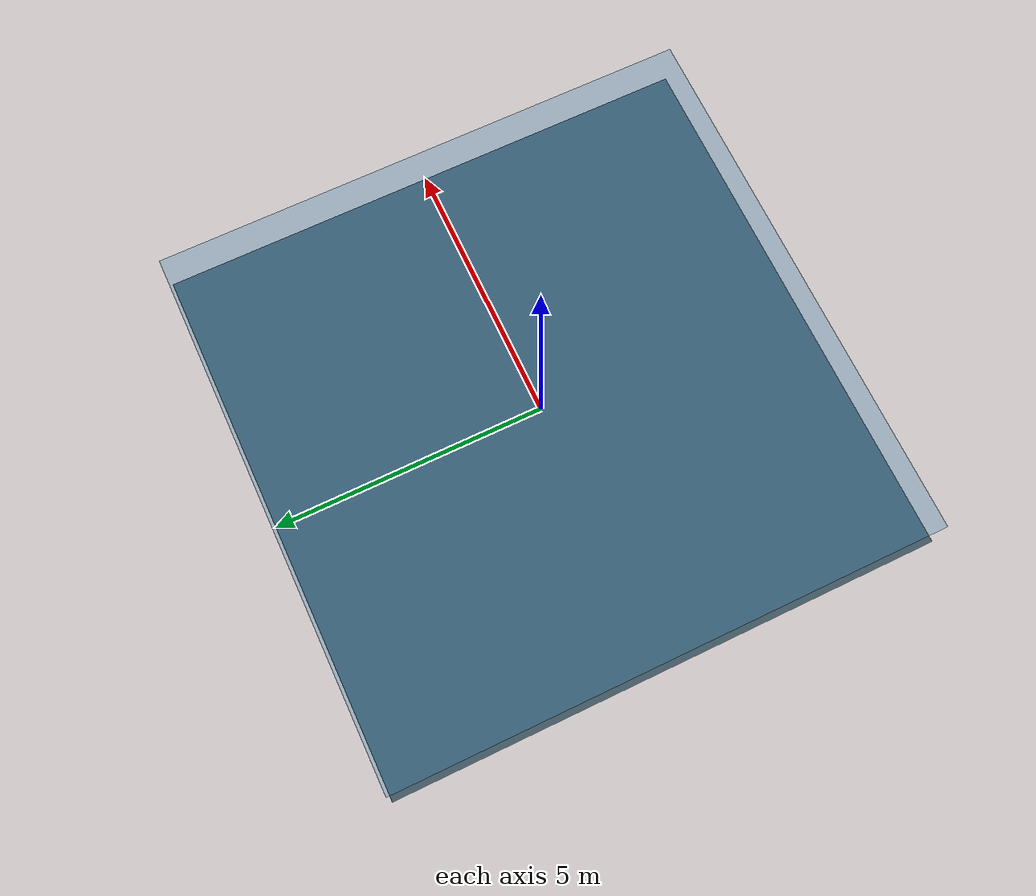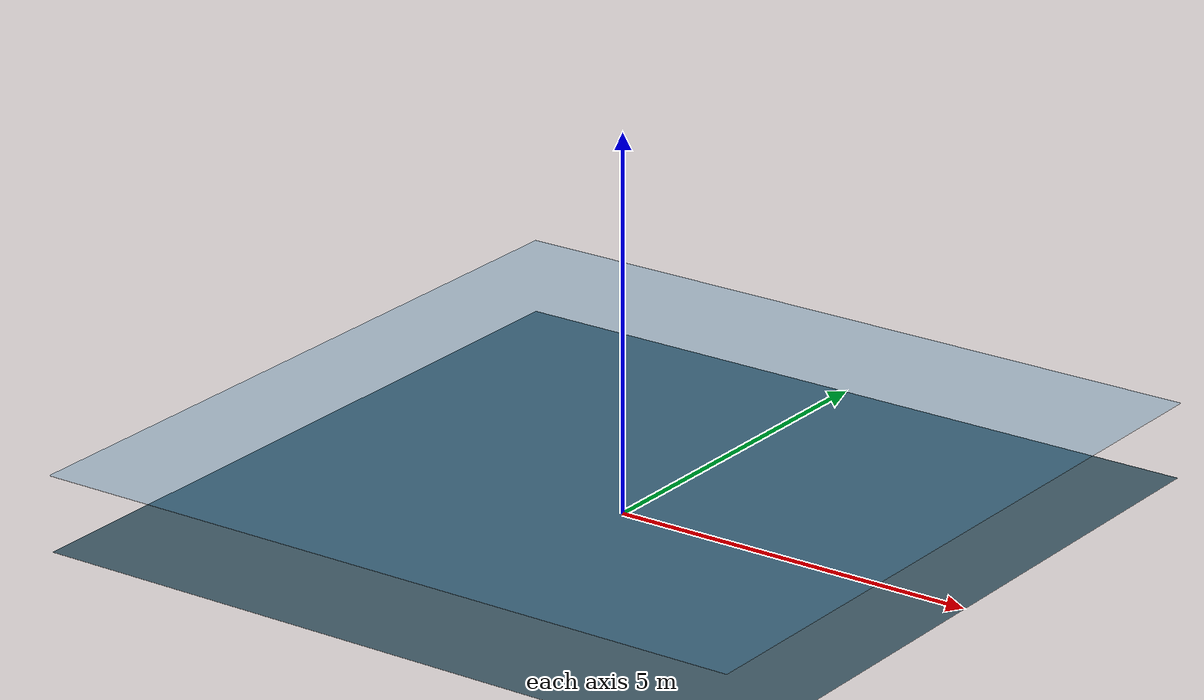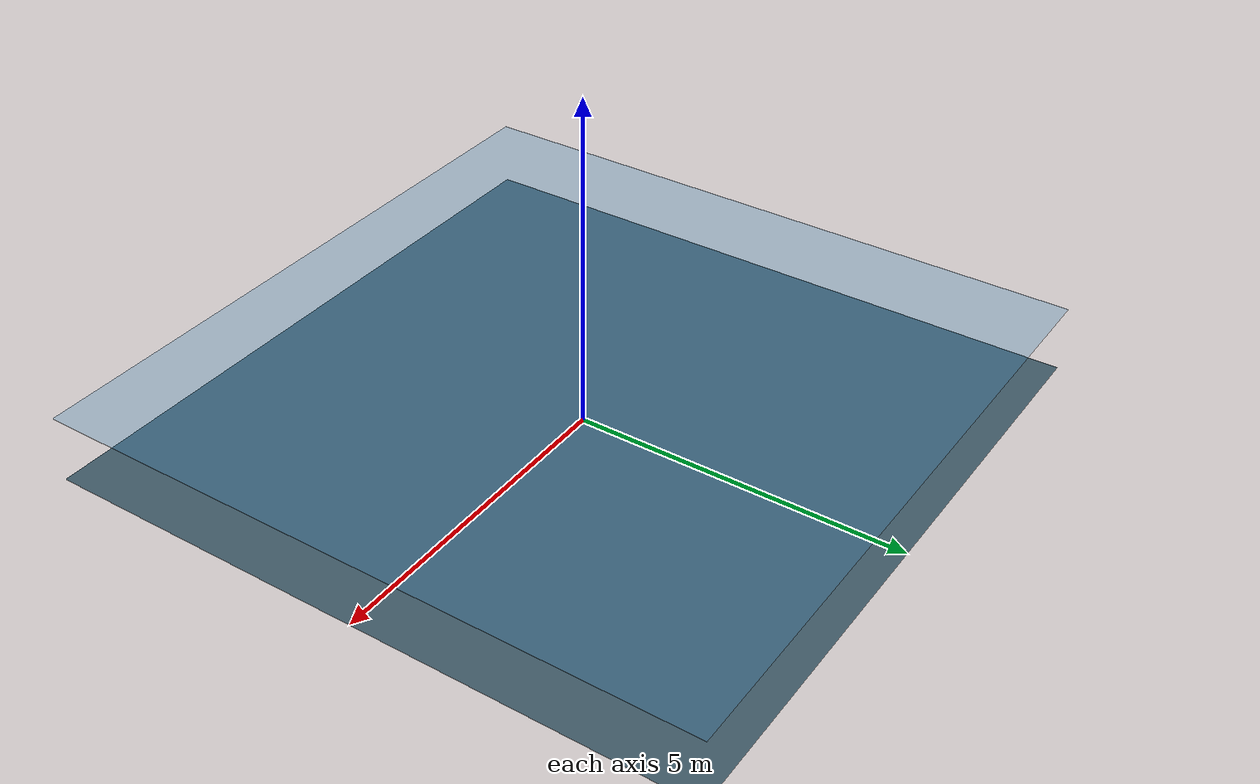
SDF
<?xml version="1.0" ?>
<sdf version="1.8">
  <world name="underwater_world">
    <physics type="ode">
      <max_step_size>0.001</max_step_size>
      <real_time_factor>1.0</real_time_factor>
      <real_time_update_rate>1000</real_time_update_rate>
    </physics>

    <!-- Required Gazebo Harmonic Systems -->
    <plugin
      filename="gz-sim-physics-system"
      name="gz::sim::systems::Physics">
    </plugin>
    <plugin
      filename="gz-sim-user-commands-system"
      name="gz::sim::systems::UserCommands">
    </plugin>
    <plugin
      filename="gz-sim-scene-broadcaster-system"
      name="gz::sim::systems::SceneBroadcaster">
    </plugin>
    <plugin
      filename="gz-sim-contact-system"
      name="gz::sim::systems::Contact">
    </plugin>

    <!-- Buoyancy System: Water density 1000 kg/m^3 -->
    <plugin
      filename="gz-sim-buoyancy-system"
      name="gz::sim::systems::Buoyancy">
      <uniform_fluid_density>1012</uniform_fluid_density>
    </plugin>
    <plugin
      filename="gz-sim-imu-system"
      name="gz::sim::systems::Imu">
    </plugin>
    <plugin
      filename="gz-sim-apply-link-wrench-system"
      name="gz::sim::systems::ApplyLinkWrench">
    </plugin>

    <!-- GUI Configuration with 0.05 m grid and underwater camera -->
    <gui fullscreen="0">
      <plugin filename="MinimalScene" name="3D View">
        <gz-gui>
          <title>3D View</title>
          <property type="bool" key="showTitleBar">false</property>
          <property type="string" key="state">docked</property>
        </gz-gui>
        <engine>ogre2</engine>
        <scene>scene</scene>
        <ambient_light>0.25 0.45 0.6</ambient_light>
        <background_color>0.1 0.25 0.4</background_color>
        <camera_pose>-0.5 0.5 0.35 0 0.3 -0.785</camera_pose>
      </plugin>

      <plugin filename="GzSceneManager" name="Scene Manager">
        <gz-gui>
          <property key="resizable" type="bool">false</property>
          <property key="width" type="double">5</property>
          <property key="height" type="double">5</property>
          <property key="state" type="string">floating</property>
          <property key="showTitleBar" type="bool">false</property>
        </gz-gui>
      </plugin>

      <plugin filename="InteractiveViewControl" name="Interactive view control">
        <gz-gui>
          <property key="resizable" type="bool">false</property>
          <property key="width" type="double">5</property>
          <property key="height" type="double">5</property>
          <property key="state" type="string">floating</property>
          <property key="showTitleBar" type="bool">false</property>
        </gz-gui>
      </plugin>

      <!-- World control (Play/Pause/Step) -->
      <plugin filename="WorldControl" name="World control">
        <gz-gui>
          <title>World control</title>
          <property type="bool" key="showTitleBar">false</property>
          <property type="bool" key="resizable">false</property>
          <property type="double" key="height">72</property>
          <property type="double" key="z">1</property>
          <property type="string" key="state">floating</property>
          <anchors target="3D View">
            <line own="left" target="left"/>
            <line own="bottom" target="bottom"/>
          </anchors>
        </gz-gui>
        <play_pause>true</play_pause>
        <step>true</step>
        <start_paused>false</start_paused>
        <use_event>true</use_event>
      </plugin>

      <!-- World statistics -->
      <plugin filename="WorldStats" name="World stats">
        <gz-gui>
          <title>World stats</title>
          <property type="bool" key="showTitleBar">false</property>
          <property type="bool" key="resizable">false</property>
          <property type="double" key="height">110</property>
          <property type="double" key="width">290</property>
          <property type="double" key="z">1</property>
          <property type="string" key="state">floating</property>
          <anchors target="3D View">
            <line own="right" target="right"/>
            <line own="bottom" target="bottom"/>
          </anchors>
        </gz-gui>
        <sim_time>true</sim_time>
        <real_time>true</real_time>
        <real_time_factor>true</real_time_factor>
        <iterations>true</iterations>
      </plugin>

      <!-- Custom 0.05m (5cm) Grid Config -->
      <plugin filename="GridConfig" name="Grid config">
        <gz-gui>
          <title>Grid Config</title>
        </gz-gui>
        <insert>
          <horizontal_cell_count>100</horizontal_cell_count>
          <vertical_cell_count>0</vertical_cell_count>
          <cell_length>0.05</cell_length>
          <pose>0 0 0.001 0 0 0</pose>
          <color>0.2 0.45 0.55 0.7</color>
        </insert>
      </plugin>

    </gui>

    <!-- Gravity -->
    <gravity>0 0 -9.81</gravity>

    <!-- Underwater Scene Lighting and Fog (inspired by Plankton underwater worlds) -->
    <scene>
      <ambient>0.2 0.35 0.5 1.0</ambient>
      <background>0.08 0.2 0.35 1.0</background>
      <shadows>true</shadows>
      <grid>false</grid>
    </scene>

    <!-- Underwater Light (attenuated as in water) -->
    <light type="directional" name="sun">
      <cast_shadows>true</cast_shadows>
      <pose>0 0 10 0 0 0</pose>
      <diffuse>0.5 0.7 0.85 1</diffuse>
      <specular>0.3 0.4 0.5 1</specular>
      <attenuation>
        <range>20</range>
        <constant>0.8</constant>
        <linear>0.05</linear>
        <quadratic>0.01</quadratic>
      </attenuation>
      <direction>-0.3 0.1 -0.9</direction>
    </light>

    <!-- Tank / Seabed Floor -->
    <model name="tank_bottom">
      <static>true</static>
      <link name="link">
        <collision name="collision">
          <geometry>
            <plane>
              <normal>0 0 1</normal>
              <size>10 10</size>
            </plane>
          </geometry>
          <surface>
            <friction>
              <ode>
                <mu>100</mu>
                <mu2>50</mu2>
              </ode>
            </friction>
            <contact>
              <ode>
                <kp>1000000.0</kp>
                <kd>100.0</kd>
              </ode>
            </contact>
          </surface>
        </collision>
        <visual name="visual">
          <geometry>
            <plane>
              <normal>0 0 1</normal>
              <size>10 10</size>
            </plane>
          </geometry>
          <material>
            <ambient>0.2 0.3 0.35 1</ambient>
            <diffuse>0.25 0.35 0.4 1</diffuse>
            <specular>0.1 0.1 0.1 1</specular>
          </material>
        </visual>
      </link>
    </model>

    <!-- Water Surface Visual (translucent plane at z = 1.0m) -->
    <model name="water_surface">
      <static>true</static>
      <pose>0 0 1.0 0 0 0</pose>
      <link name="surface_link">
        <visual name="surface_visual">
          <geometry>
            <plane>
              <normal>0 0 1</normal>
              <size>10 10</size>
            </plane>
          </geometry>
          <material>
            <ambient>0.1 0.4 0.6 0.3</ambient>
            <diffuse>0.2 0.5 0.7 0.3</diffuse>
            <specular>0.6 0.8 1.0 0.5</specular>
          </material>
        </visual>
      </link>
    </model>

  </world>
</sdf>
